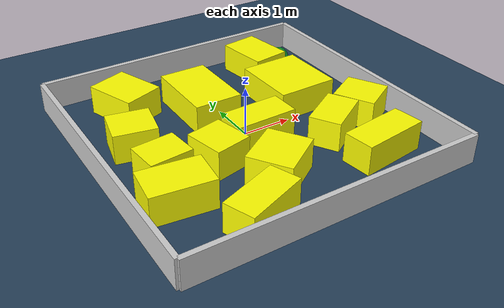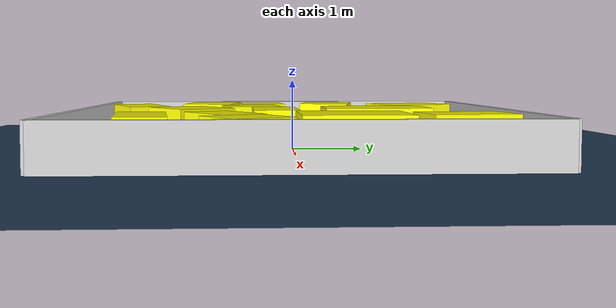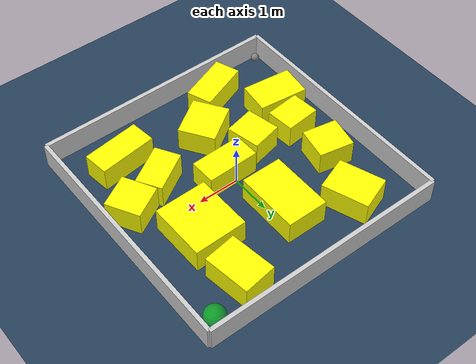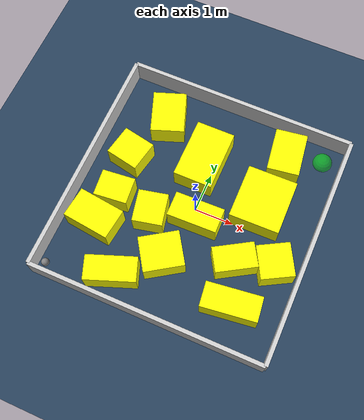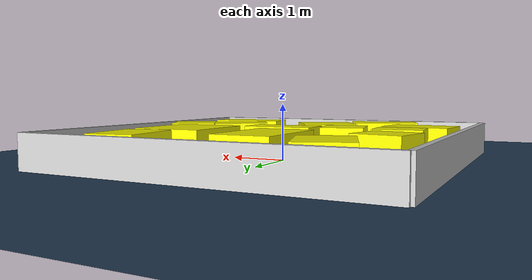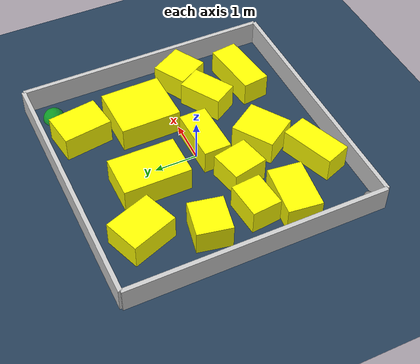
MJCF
<?xml version="1.0" ?>
<mujoco model="generated_environment">
  <option timestep="0.01" integrator="RK4" cone="elliptic"/>
  <default>
    <geom density="1"/>
  </default>
  <asset>
    <texture builtin="gradient" height="3072" rgb1="0.3 0.5 0.7" rgb2="0 0 0" type="skybox" width="512"/>
    <texture builtin="checker" height="300" mark="edge" markrgb="0.8 0.8 0.8" name="groundplane" rgb1="0.2 0.3 0.4" rgb2="0.1 0.2 0.3" type="2d" width="300"/>
    <material name="groundplane" reflectance="0.2" texrepeat="5 5" texture="groundplane" texuniform="true"/>
    <material name="robot" rgba="1.0 1.0 0.0 1.0"/>
  </asset>
  <worldbody>
    <light dir="0 0 -1" directional="true" pos="0 0 1.5"/>
    <geom condim="4" friction="0.5 0.005 0.001" material="groundplane" name="floor" size="0 0 0.05" type="plane"/>
    <body name="walls">
      <geom name="wall_1" condim="4" pos="-3.0 0.0 0.3" rgba="0.800000011920929 0.800000011920929 0.800000011920929 1.0" size="0.05 3.0 0.3" type="box"/>
      <geom name="wall_2" condim="4" pos="3.0 0.0 0.3" rgba="0.800000011920929 0.800000011920929 0.800000011920929 1.0" size="0.05 3.0 0.3" type="box"/>
      <geom name="wall_3" condim="4" pos="0.0 -3.0 0.3" rgba="0.800000011920929 0.800000011920929 0.800000011920929 1.0" size="3.0 0.05 0.3" type="box"/>
      <geom name="wall_4" condim="4" pos="0.0 3.0 0.3" rgba="0.800000011920929 0.800000011920929 0.800000011920929 1.0" size="3.0 0.05 0.3" type="box"/>
    </body>
    <body name="robot">
      <joint name="joint_x" type="slide" pos="0 0 0" axis="1 0 0"/>
      <joint name="joint_y" type="slide" pos="0 0 0" axis="0 1 0"/>
      <geom name="robot" type="sphere" pos="-2.75 -2.75 0.2" size="0.1 0.0 0.0" mass="5.0" friction="1.0 0.005 0.001" condim="4" rgba="0.5 0.5 0.5 1.0"/>
    </body>
    <body name="obstacle_1_movable">
      <geom name="obstacle_1_movable" condim="4" pos="-1.1567682589759254 -2.347997398617539 0.3" euler="0 0 290.4621907137314" friction="0.0 0.005 0.001" rgba="1 1 0 1" size="0.31071142054336276 0.6353672490953213 0.3" type="box" mass="0.1"/>
      <joint type="free"/>
    </body>
    <body name="obstacle_2_movable">
      <geom name="obstacle_2_movable" condim="4" pos="1.4164675161220468 -0.933725493602104 0.3" euler="0 0 121.15360730466377" friction="0.0 0.005 0.001" rgba="1 1 0 1" size="0.31660683044026 0.5176273413480504 0.3" type="box" mass="0.1"/>
      <joint type="free"/>
    </body>
    <body name="obstacle_3_movable">
      <geom name="obstacle_3_movable" condim="4" pos="-2.0750750307393533 0.6697588253685018 0.3" euler="0 0 168.8653668518156" friction="0.0 0.005 0.001" rgba="1 1 0 1" size="0.42737358349009996 0.3958129709243456 0.3" type="box" mass="0.1"/>
      <joint type="free"/>
    </body>
    <body name="obstacle_4_movable">
      <geom name="obstacle_4_movable" condim="4" pos="1.7503556353295209 -1.9526829836999946 0.3" euler="0 0 7.306942490123327" friction="0.0 0.005 0.001" rgba="1 1 0 1" size="0.6970897073395922 0.3134077215798092 0.3" type="box" mass="0.1"/>
      <joint type="free"/>
    </body>
    <body name="obstacle_5_movable">
      <geom name="obstacle_5_movable" condim="4" pos="1.5037692994582308 0.7093618541575242 0.3" euler="0 0 90.99194066659244" friction="0.0 0.005 0.001" rgba="1 1 0 1" size="0.7017155930929083 0.6347318397011483 0.3" type="box" mass="0.1"/>
      <joint type="free"/>
    </body>
    <body name="obstacle_6_movable">
      <geom name="obstacle_6_movable" condim="4" pos="-0.30361004545698744 1.2560388344752198 0.3" euler="0 0 90.0784893175804" friction="0.0 0.005 0.001" rgba="1 1 0 1" size="0.7779965430958395 0.500149680423787 0.3" type="box" mass="0.1"/>
      <joint type="free"/>
    </body>
    <body name="obstacle_7_movable">
      <geom name="obstacle_7_movable" condim="4" pos="-1.6205591980275733 1.999540715711146 0.3" euler="0 0 20.035516219713973" friction="0.0 0.005 0.001" rgba="1 1 0 1" size="0.429880297500089 0.5541179031852776 0.3" type="box" mass="0.1"/>
      <joint type="free"/>
    </body>
    <body name="obstacle_8_movable">
      <geom name="obstacle_8_movable" condim="4" pos="-0.23554720148695907 -1.4938887577028228 0.3" euler="0 0 123.40663077587575" friction="0.0 0.005 0.001" rgba="1 1 0 1" size="0.4418399510153722 0.5050618789477055 0.3" type="box" mass="0.1"/>
      <joint type="free"/>
    </body>
    <body name="obstacle_9_movable">
      <geom name="obstacle_9_movable" condim="4" pos="-0.9410701571355311 -0.5903033332941932 0.3" euler="0 0 282.4949319962342" friction="0.0 0.005 0.001" rgba="1 1 0 1" size="0.41265664554590276 0.37656873845380057 0.3" type="box" mass="0.1"/>
      <joint type="free"/>
    </body>
    <body name="obstacle_10_movable">
      <geom name="obstacle_10_movable" condim="4" pos="-2.141013827711605 -1.2669306501395365 0.3" euler="0 0 353.31331878541164" friction="0.0 0.005 0.001" rgba="1 1 0 1" size="0.6022613065492779 0.3924956267781493 0.3" type="box" mass="0.1"/>
      <joint type="free"/>
    </body>
    <body name="obstacle_11_movable">
      <geom name="obstacle_11_movable" condim="4" pos="1.5934792014426202 2.139133866479002 0.3" euler="0 0 8.31788463334063" friction="0.0 0.005 0.001" rgba="1 1 0 1" size="0.40653559163052466 0.5668816730513616 0.3" type="box" mass="0.1"/>
      <joint type="free"/>
    </body>
    <body name="obstacle_12_movable">
      <geom name="obstacle_12_movable" condim="4" pos="0.12017933402775416 -0.25979112445849983 0.3" euler="0 0 181.47350400756181" friction="0.0 0.005 0.001" rgba="1 1 0 1" size="0.6333742845080934 0.3191888379266477 0.3" type="box" mass="0.1"/>
      <joint type="free"/>
    </body>
    <body name="obstacle_13_movable">
      <geom name="obstacle_13_movable" condim="4" pos="2.331333199668031 -0.6373534909333822 0.3" euler="0 0 29.146591191981383" friction="0.0 0.005 0.001" rgba="1 1 0 1" size="0.4148167352169691 0.42198361657444067 0.3" type="box" mass="0.1"/>
      <joint type="free"/>
    </body>
    <body name="obstacle_15_movable">
      <geom name="obstacle_15_movable" condim="4" pos="-1.9842205424722605 -0.43946515938421493 0.3" euler="0 0 185.66031664090602" friction="0.0 0.005 0.001" rgba="1 1 0 1" size="0.425944287683285 0.3430910419728806 0.3" type="box" mass="0.1"/>
      <joint type="free"/>
    </body>
    <site name="goal" type="sphere" pos = "2.5 2.5 0.0" size="0.25" rgba="0 1 0 0.5"/>
  </worldbody>
  <actuator>
    <motor name="actuator_x" joint="joint_x" gear="1" ctrlrange="-1 1"/>
    <motor name="actuator_y" joint="joint_y" gear="1" ctrlrange="-1 1"/>
  </actuator>
</mujoco>
